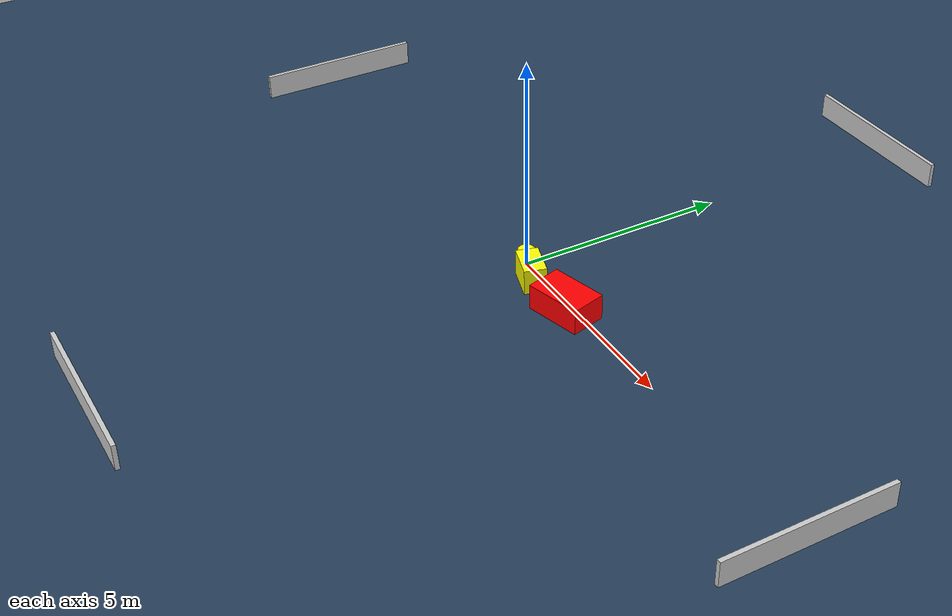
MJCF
<?xml version="1.0" ?>
<mujoco model="generated_environment">
  <option timestep="0.01" integrator="RK4" cone="elliptic"/>
  <default>
    <geom density="1"/>
  </default>
  <asset>
    <texture builtin="gradient" height="3072" name="skybox" rgb1="0.3 0.5 0.7" rgb2="0 0 0" type="skybox" width="512"/>
    <texture builtin="checker" height="300" name="groundplane" rgb1="0.2 0.3 0.4" rgb2="0.1 0.2 0.3" type="2d" width="300"/>
    <material name="groundplane" reflectance="0.2" texrepeat="5 5" texture="groundplane"/>
  </asset>
  <worldbody>
    <light dir="0 0 -1" directional="true" pos="0 0 1.5"/>
    <geom condim="3" friction="0.5 0.005 0.001" material="groundplane" name="floor" pos="0 0 0" size="0 0 0.05" type="plane"/>
    <body name="walls">
      <geom name="wall_1" condim="4" pos="-10.0 0.0 0.3" rgba="0.800000011920929 0.800000011920929 0.800000011920929 1.0" size="0.05 2.0 0.3" type="box"/>
      <geom name="wall_2" condim="4" pos="10.0 0.0 0.3" rgba="0.800000011920929 0.800000011920929 0.800000011920929 1.0" size="0.05 2.0 0.3" type="box"/>
      <geom name="wall_3" condim="4" pos="0.0 -10.0 0.3" rgba="0.800000011920929 0.800000011920929 0.800000011920929 1.0" size="2.0 0.05 0.3" type="box"/>
      <geom name="wall_4" condim="4" pos="0.0 10.0 0.3" rgba="0.800000011920929 0.800000011920929 0.800000011920929 1.0" size="2.0 0.05 0.3" type="box"/>
    </body>
    <body name="robot">
      <joint name="joint_x" type="slide" pos="0 0 0" axis="1 0 0"/>
      <joint name="joint_y" type="slide" pos="0 0 0" axis="0 1 0"/>
      <geom name="robot" type="cylinder" pos="0.0 0.0 0.2" size="0.2 0.2 0.0" mass="5.0" friction="1.0 0.005 0.0001" condim="4" rgba="1.0 1.0 0.0 1.0"/>
    </body>
    <body name="obstacle_1_movable">
      <geom name="obstacle_1_movable" condim="4" pos="0.6387446137634134 -0.25703815550723474 0.3" euler="0 0 343.5040785404262" friction="0.0 0.005 0.001" rgba="1.0 1.0 0.0 1.0" size="0.4194904041525796 0.25610033094456663 0.3" type="box" mass="0.1"/>
      <joint type="free"/>
    </body>
    <body name="obstacle_2_static">
      <geom name="obstacle_2_static" condim="4" pos="1.983861473195418 -0.18745493363694726 0.3" euler="0 0 285.1129668228101" friction="0.0 0.005 0.001" rgba="1.0 0.0 0.0 1.0" size="0.41576837130607774 0.67016934700897 0.3" type="box"/>
    </body>
  </worldbody>
  <actuator>
    <motor name="actuator_x" joint="joint_x" gear="1" ctrlrange="-1 1"/>
    <motor name="actuator_y" joint="joint_y" gear="1" ctrlrange="-1 1"/>
  </actuator>
</mujoco>
